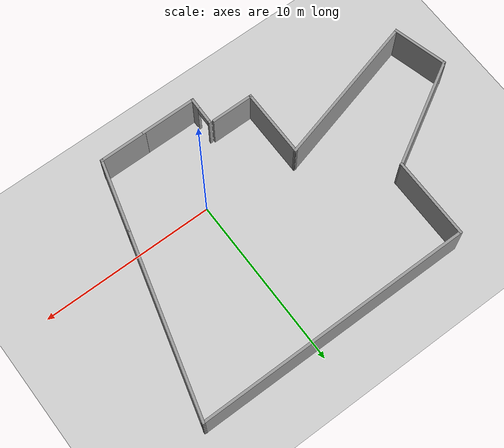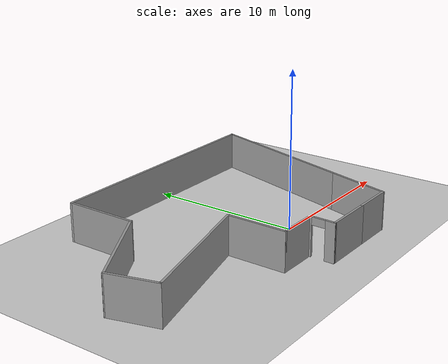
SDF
<sdf version='1.4'>
  <world name='default'>
    <!-- A global light source -->
    <include>
      <uri>model://sun</uri>
    </include>

    <!-- A ground plane -->
    <include>
      <uri>model://ground_plane</uri>
    </include>

    <physics type="ode">
      <real_time_update_rate>1000.0</real_time_update_rate>
      <max_step_size>0.001</max_step_size>
      <real_time_factor>1</real_time_factor>
      <ode>
        <solver>
          <type>quick</type>
          <iters>150</iters>
          <precon_iters>0</precon_iters>
          <sor>1.400000</sor>
          <use_dynamic_moi_rescaling>1</use_dynamic_moi_rescaling>
        </solver>
        <constraints>
          <cfm>0.00001</cfm>
          <erp>0.2</erp>
          <contact_max_correcting_vel>2000.000000</contact_max_correcting_vel>
          <contact_surface_layer>0.01000</contact_surface_layer>
        </constraints>
      </ode>
    </physics>

    <!-- Load world -->
    <include>
      <uri>model://my_room</uri>
    </include>

    <scene>
      <ambient>0.4 0.4 0.4 1</ambient>
      <background>0.7 0.7 0.7 1</background>
      <shadows>true</shadows>
    </scene>

    <gui fullscreen='0'>
      <camera name='user_camera'>
        <pose>0.8 0.0 12.0 0 1.5708 0</pose>
        <view_controller>orbit</view_controller>
      </camera>
    </gui>
  </world>
</sdf>

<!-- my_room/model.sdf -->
<sdf version='1.7'>
  <model name='my_room'>
    <pose>-3.73999 2.42882 0 0 -0 0</pose>
    <link name='Wall_0'>
      <collision name='Wall_0_Collision'>
        <geometry>
          <box>
            <size>3.25 0.15 2.5</size>
          </box>
        </geometry>
        <pose>0 0 1.25 0 -0 0</pose>
      </collision>
      <visual name='Wall_0_Visual'>
        <pose>0 0 1.25 0 -0 0</pose>
        <geometry>
          <box>
            <size>3.25 0.15 2.5</size>
          </box>
        </geometry>
        <material>
          <script>
            <uri>file://media/materials/scripts/gazebo.material</uri>
            <name>Gazebo/Grey</name>
          </script>
          <ambient>1 1 1 1</ambient>
        </material>
        <meta>
          <layer>0</layer>
        </meta>
      </visual>
      <pose>2.78999 -6.97881 0 0 -0 3.14159</pose>
    </link>
    <link name='Wall_1'>
      <pose>1.24499 -6.20882 0 0 -0 1.55132</pose>
      <visual name='Wall_1_Visual_0'>
        <pose>-0.514548 0 1.25 0 -0 0</pose>
        <geometry>
          <box>
            <size>0.661197 0.15 2.5</size>
          </box>
        </geometry>
        <material>
          <script>
            <uri>file://media/materials/scripts/gazebo.material</uri>
            <name>Gazebo/Grey</name>
          </script>
          <ambient>1 1 1 1</ambient>
        </material>
        <meta>
          <layer>0</layer>
        </meta>
      </visual>
      <collision name='Wall_1_Collision_0'>
        <geometry>
          <box>
            <size>0.661197 0.15 2.5</size>
          </box>
        </geometry>
        <pose>-0.514548 0 1.25 0 -0 0</pose>
      </collision>
      <visual name='Wall_1_Visual_1'>
        <pose>0.780598 0 1.25 0 -0 0</pose>
        <geometry>
          <box>
            <size>0.129096 0.15 2.5</size>
          </box>
        </geometry>
        <material>
          <script>
            <uri>file://media/materials/scripts/gazebo.material</uri>
            <name>Gazebo/Grey</name>
          </script>
          <ambient>1 1 1 1</ambient>
        </material>
        <meta>
          <layer>0</layer>
        </meta>
      </visual>
      <collision name='Wall_1_Collision_1'>
        <geometry>
          <box>
            <size>0.129096 0.15 2.5</size>
          </box>
        </geometry>
        <pose>0.780598 0 1.25 0 -0 0</pose>
      </collision>
      <visual name='Wall_1_Visual_2'>
        <pose>0.26605 0 2.25 0 -0 0</pose>
        <geometry>
          <box>
            <size>0.9 0.15 0.5</size>
          </box>
        </geometry>
        <material>
          <script>
            <uri>file://media/materials/scripts/gazebo.material</uri>
            <name>Gazebo/Grey</name>
          </script>
          <ambient>1 1 1 1</ambient>
        </material>
        <meta>
          <layer>0</layer>
        </meta>
      </visual>
      <collision name='Wall_1_Collision_2'>
        <geometry>
          <box>
            <size>0.9 0.15 0.5</size>
          </box>
        </geometry>
        <pose>0.26605 0 2.25 0 -0 0</pose>
      </collision>
    </link>
    <link name='Wall_10'>
      <collision name='Wall_10_Collision'>
        <geometry>
          <box>
            <size>9 0.15 2.5</size>
          </box>
        </geometry>
        <pose>0 0 1.25 0 -0 0</pose>
      </collision>
      <visual name='Wall_10_Visual'>
        <pose>0 0 1.25 0 -0 0</pose>
        <geometry>
          <box>
            <size>9 0.15 2.5</size>
          </box>
        </geometry>
        <material>
          <script>
            <uri>file://media/materials/scripts/gazebo.material</uri>
            <name>Gazebo/Grey</name>
          </script>
          <ambient>1 1 1 1</ambient>
        </material>
        <meta>
          <layer>0</layer>
        </meta>
      </visual>
      <pose>-5.59277 -2.64528 0 0 -0 0.261799</pose>
    </link>
    <link name='Wall_11'>
      <collision name='Wall_11_Collision'>
        <geometry>
          <box>
            <size>4 0.15 2.5</size>
          </box>
        </geometry>
        <pose>0 0 1.25 0 -0 0</pose>
      </collision>
      <visual name='Wall_11_Visual'>
        <pose>0 0 1.25 0 -0 0</pose>
        <geometry>
          <box>
            <size>4 0.15 2.5</size>
          </box>
        </geometry>
        <material>
          <script>
            <uri>file://media/materials/scripts/gazebo.material</uri>
            <name>Gazebo/Grey</name>
          </script>
          <ambient>1 1 1 1</ambient>
        </material>
        <meta>
          <layer>0</layer>
        </meta>
      </visual>
      <pose>-1.31855 -3.42501 0 0 -0 -1.5708</pose>
    </link>
    <link name='Wall_12'>
      <collision name='Wall_12_Collision'>
        <geometry>
          <box>
            <size>2.5 0.15 2.5</size>
          </box>
        </geometry>
        <pose>0 0 1.25 0 -0 0</pose>
      </collision>
      <visual name='Wall_12_Visual'>
        <pose>0 0 1.25 0 -0 0</pose>
        <geometry>
          <box>
            <size>2.5 0.15 2.5</size>
          </box>
        </geometry>
        <material>
          <script>
            <uri>file://media/materials/scripts/gazebo.material</uri>
            <name>Gazebo/Grey</name>
          </script>
          <ambient>1 1 1 1</ambient>
        </material>
        <meta>
          <layer>0</layer>
        </meta>
      </visual>
      <pose>-0.143549 -5.35001 0 0 -0 0</pose>
    </link>
    <link name='Wall_3'>
      <collision name='Wall_3_Collision'>
        <geometry>
          <box>
            <size>2.75 0.15 2.5</size>
          </box>
        </geometry>
        <pose>0 0 1.25 0 -0 0</pose>
      </collision>
      <visual name='Wall_3_Visual'>
        <pose>0 0 1.25 0 -0 0</pose>
        <geometry>
          <box>
            <size>2.75 0.15 2.5</size>
          </box>
        </geometry>
        <material>
          <script>
            <uri>file://media/materials/scripts/gazebo.material</uri>
            <name>Gazebo/Grey</name>
          </script>
          <ambient>1 1 1 1</ambient>
        </material>
        <meta>
          <layer>0</layer>
        </meta>
      </visual>
      <pose>5.63999 -6.97881 0 0 -0 0</pose>
    </link>
    <link name='Wall_4'>
      <collision name='Wall_4_Collision'>
        <geometry>
          <box>
            <size>4.25 0.15 2.5</size>
          </box>
        </geometry>
        <pose>0 0 1.25 0 -0 0</pose>
      </collision>
      <visual name='Wall_4_Visual'>
        <pose>0 0 1.25 0 -0 0</pose>
        <geometry>
          <box>
            <size>4.25 0.15 2.5</size>
          </box>
        </geometry>
        <material>
          <script>
            <uri>file://media/materials/scripts/gazebo.material</uri>
            <name>Gazebo/Grey</name>
          </script>
          <ambient>1 1 1 1</ambient>
        </material>
        <meta>
          <layer>0</layer>
        </meta>
      </visual>
      <pose>7.47057 -4.99867 0 0 -0 1.309</pose>
    </link>
    <link name='Wall_5'>
      <collision name='Wall_5_Collision'>
        <geometry>
          <box>
            <size>10.5 0.15 2.5</size>
          </box>
        </geometry>
        <pose>0 0 1.25 0 -0 0</pose>
      </collision>
      <visual name='Wall_5_Visual'>
        <pose>0 0 1.25 0 -0 0</pose>
        <geometry>
          <box>
            <size>10.5 0.15 2.5</size>
          </box>
        </geometry>
        <material>
          <script>
            <uri>file://media/materials/scripts/gazebo.material</uri>
            <name>Gazebo/Grey</name>
          </script>
          <ambient>1 1 1 1</ambient>
        </material>
        <meta>
          <layer>0</layer>
        </meta>
      </visual>
      <pose>9.34054 1.98015 0 0 -0 1.309</pose>
    </link>
    <link name='Wall_6'>
      <collision name='Wall_6_Collision'>
        <geometry>
          <box>
            <size>16 0.15 2.5</size>
          </box>
        </geometry>
        <pose>0 0 1.25 0 -0 0</pose>
      </collision>
      <visual name='Wall_6_Visual'>
        <pose>0 0 1.25 0 -0 0</pose>
        <geometry>
          <box>
            <size>16 0.15 2.5</size>
          </box>
        </geometry>
        <material>
          <script>
            <uri>file://media/materials/scripts/gazebo.material</uri>
            <name>Gazebo/Grey</name>
          </script>
          <ambient>1 1 1 1</ambient>
        </material>
        <meta>
          <layer>0</layer>
        </meta>
      </visual>
      <pose>2.75493 6.97881 0 0 -0 3.14159</pose>
    </link>
    <link name='Wall_7'>
      <collision name='Wall_7_Collision'>
        <geometry>
          <box>
            <size>4.75 0.15 2.5</size>
          </box>
        </geometry>
        <pose>0 0 1.25 0 -0 0</pose>
      </collision>
      <visual name='Wall_7_Visual'>
        <pose>0 0 1.25 0 -0 0</pose>
        <geometry>
          <box>
            <size>4.75 0.15 2.5</size>
          </box>
        </geometry>
        <material>
          <script>
            <uri>file://media/materials/scripts/gazebo.material</uri>
            <name>Gazebo/Grey</name>
          </script>
          <ambient>1 1 1 1</ambient>
        </material>
        <meta>
          <layer>0</layer>
        </meta>
      </visual>
      <pose>-5.17007 4.67881 0 0 -0 -1.5708</pose>
    </link>
    <link name='Wall_8'>
      <collision name='Wall_8_Collision'>
        <geometry>
          <box>
            <size>6.5 0.15 2.5</size>
          </box>
        </geometry>
        <pose>0 0 1.25 0 -0 0</pose>
      </collision>
      <visual name='Wall_8_Visual'>
        <pose>0 0 1.25 0 -0 0</pose>
        <geometry>
          <box>
            <size>6.5 0.15 2.5</size>
          </box>
        </geometry>
        <material>
          <script>
            <uri>file://media/materials/scripts/gazebo.material</uri>
            <name>Gazebo/Grey</name>
          </script>
          <ambient>1 1 1 1</ambient>
        </material>
        <meta>
          <layer>0</layer>
        </meta>
      </visual>
      <pose>-7.9197 0.791314 0 0 -0 -2.61799</pose>
    </link>
    <link name='Wall_9'>
      <collision name='Wall_9_Collision'>
        <geometry>
          <box>
            <size>3.25 0.15 2.5</size>
          </box>
        </geometry>
        <pose>0 0 1.25 0 -0 0</pose>
      </collision>
      <visual name='Wall_9_Visual'>
        <pose>0 0 1.25 0 -0 0</pose>
        <geometry>
          <box>
            <size>3.25 0.15 2.5</size>
          </box>
        </geometry>
        <material>
          <script>
            <uri>file://media/materials/scripts/gazebo.material</uri>
            <name>Gazebo/Grey</name>
          </script>
          <ambient>1 1 1 1</ambient>
        </material>
        <meta>
          <layer>0</layer>
        </meta>
      </visual>
      <pose>-10.2682 -2.29337 0 0 -0 -1.309</pose>
    </link>
    <static>1</static>
  </model>
</sdf>
